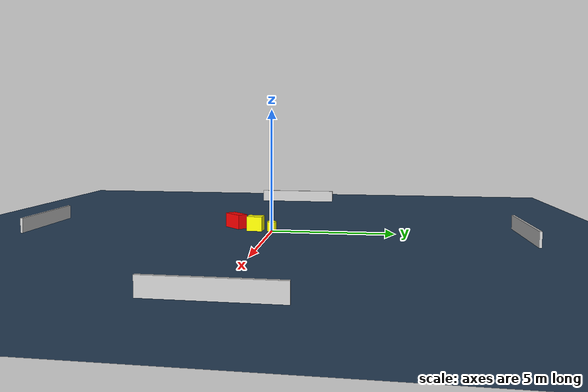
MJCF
<?xml version="1.0" ?>
<mujoco model="generated_environment">
  <option timestep="0.01" integrator="RK4" cone="elliptic"/>
  <default>
    <geom density="1"/>
  </default>
  <asset>
    <texture builtin="gradient" height="3072" name="skybox" rgb1="0.3 0.5 0.7" rgb2="0 0 0" type="skybox" width="512"/>
    <texture builtin="checker" height="300" name="groundplane" rgb1="0.2 0.3 0.4" rgb2="0.1 0.2 0.3" type="2d" width="300"/>
    <material name="groundplane" reflectance="0.2" texrepeat="5 5" texture="groundplane"/>
  </asset>
  <worldbody>
    <light dir="0 0 -1" directional="true" pos="0 0 1.5"/>
    <geom condim="3" friction="0.5 0.005 0.001" material="groundplane" name="floor" pos="0 0 0" size="0 0 0.05" type="plane"/>
    <body name="walls">
      <geom name="wall_1" condim="4" pos="-10.0 0.0 0.3" rgba="0.800000011920929 0.800000011920929 0.800000011920929 1.0" size="0.05 2.0 0.3" type="box"/>
      <geom name="wall_2" condim="4" pos="10.0 0.0 0.3" rgba="0.800000011920929 0.800000011920929 0.800000011920929 1.0" size="0.05 2.0 0.3" type="box"/>
      <geom name="wall_3" condim="4" pos="0.0 -10.0 0.3" rgba="0.800000011920929 0.800000011920929 0.800000011920929 1.0" size="2.0 0.05 0.3" type="box"/>
      <geom name="wall_4" condim="4" pos="0.0 10.0 0.3" rgba="0.800000011920929 0.800000011920929 0.800000011920929 1.0" size="2.0 0.05 0.3" type="box"/>
    </body>
    <body name="robot">
      <joint name="joint_x" type="slide" pos="0 0 0" axis="1 0 0"/>
      <joint name="joint_y" type="slide" pos="0 0 0" axis="0 1 0"/>
      <geom name="robot" type="cylinder" pos="0.0 0.0 0.2" size="0.2 0.2 0.0" mass="5.0" friction="1.0 0.005 0.0001" condim="4" rgba="1.0 1.0 0.0 1.0"/>
    </body>
    <body name="obstacle_1_movable">
      <geom name="obstacle_1_movable" condim="4" pos="-0.07435311164970204 -0.686815550206958 0.3" euler="0 0 85.75687925769523" friction="0.0 0.005 0.001" rgba="1.0 1.0 0.0 1.0" size="0.3215880058712626 0.26135388906959867 0.3" type="box" mass="0.1"/>
      <joint type="free"/>
    </body>
    <body name="obstacle_2_static">
      <geom name="obstacle_2_static" condim="4" pos="-0.633297043533904 -1.6241008851133314 0.3" euler="0 0 315.6419951831868" friction="0.0 0.005 0.001" rgba="1.0 0.0 0.0 1.0" size="0.22124622904158753 0.47568348554903 0.3" type="box"/>
    </body>
  </worldbody>
  <actuator>
    <motor name="actuator_x" joint="joint_x" gear="1" ctrlrange="-1 1"/>
    <motor name="actuator_y" joint="joint_y" gear="1" ctrlrange="-1 1"/>
  </actuator>
</mujoco>
